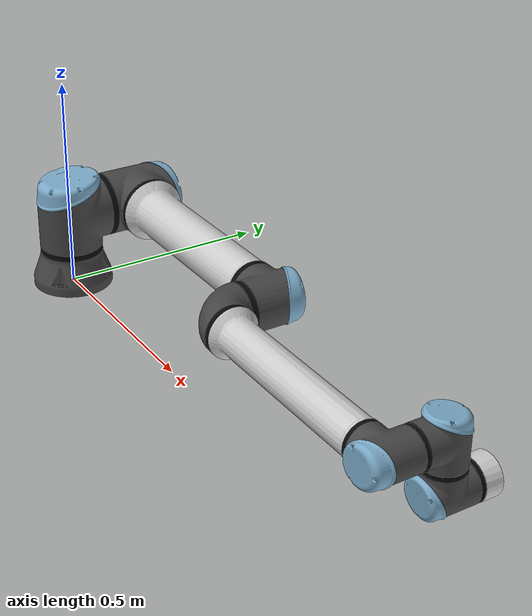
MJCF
<?xml version="1.0" ?>
<mujoco model="ur10e">
	<compiler meshdir="ur10e/meshes" texturedir="ur10e/textures" angle="radian" autolimits="true" balanceinertia="true" boundmass="0.000001" boundinertia="0.000001"/>
	<default>
		<default class="visual">
			<geom contype="0" conaffinity="0"/>
		</default>
		<default class="collision">
			<geom rgba="1.0 0.0 0.0 0.0"/>
		</default>
	</default>
	<asset>
		<mesh name="base_0" file="stl/base_0.stl" scale="1.0 1.0 1.0"/>
		<mesh name="base_1" file="stl/base_1.stl" scale="1.0 1.0 1.0"/>
		<mesh name="shoulder_0" file="stl/shoulder_0.stl" scale="1.0 1.0 1.0"/>
		<mesh name="shoulder_1" file="stl/shoulder_1.stl" scale="1.0 1.0 1.0"/>
		<mesh name="shoulder_2" file="stl/shoulder_2.stl" scale="1.0 1.0 1.0"/>
		<mesh name="upperarm_0" file="stl/upperarm_0.stl" scale="1.0 1.0 1.0"/>
		<mesh name="upperarm_1" file="stl/upperarm_1.stl" scale="1.0 1.0 1.0"/>
		<mesh name="upperarm_2" file="stl/upperarm_2.stl" scale="1.0 1.0 1.0"/>
		<mesh name="upperarm_3" file="stl/upperarm_3.stl" scale="1.0 1.0 1.0"/>
		<mesh name="forearm_0" file="stl/forearm_0.stl" scale="1.0 1.0 1.0"/>
		<mesh name="forearm_1" file="stl/forearm_1.stl" scale="1.0 1.0 1.0"/>
		<mesh name="forearm_2" file="stl/forearm_2.stl" scale="1.0 1.0 1.0"/>
		<mesh name="forearm_3" file="stl/forearm_3.stl" scale="1.0 1.0 1.0"/>
		<mesh name="wrist1_0" file="stl/wrist1_0.stl" scale="1.0 1.0 1.0"/>
		<mesh name="wrist1_1" file="stl/wrist1_1.stl" scale="1.0 1.0 1.0"/>
		<mesh name="wrist1_2" file="stl/wrist1_2.stl" scale="1.0 1.0 1.0"/>
		<mesh name="wrist2_0" file="stl/wrist2_0.stl" scale="1.0 1.0 1.0"/>
		<mesh name="wrist2_1" file="stl/wrist2_1.stl" scale="1.0 1.0 1.0"/>
		<mesh name="wrist2_2" file="stl/wrist2_2.stl" scale="1.0 1.0 1.0"/>
		<mesh name="wrist3" file="stl/wrist3.stl" scale="1.0 1.0 1.0"/>
		<material name="black" rgba="0.032999999821186066 0.032999999821186066 0.032999999821186066 1.0" emission="0.0" specular="0.5"/>
		<material name="jointgray" rgba="0.27799999713897705 0.27799999713897705 0.27799999713897705 1.0" emission="0.0" specular="0.5"/>
		<material name="urblue" rgba="0.49000000953674316 0.6779999732971191 0.800000011920929 1.0" emission="0.0" specular="0.5"/>
		<material name="linkgray" rgba="0.8199999928474426 0.8199999928474426 0.8199999928474426 1.0" emission="0.0" specular="0.5"/>
	</asset>
	<worldbody>
		<body name="ur10e" pos="0.0 0.0 0.0" quat="1.0 0.0 0.0 0.0">
			<body name="base" pos="0.0 0.0 0.0" quat="1.0 0.0 0.0 0.0">
				<geom name="Geom_0" type="mesh" pos="-3.125204557363759e-06 -4.992584194951633e-07 0.09375101327896118" quat="0.5703510046005249 0.4179709553718567 -0.5703510046005249 0.4179709553718567" mesh="base_0" material="black" class="visual"/>
				<geom name="Geom_1" type="mesh" pos="-1.3645167484810372e-07 2.6099980914295884e-06 0.03139932453632355" quat="0.348185271024704 0.6154395341873169 -0.3482106924057007 0.6154271364212036" mesh="base_1" material="jointgray" class="visual"/>
				<body name="shoulder_link" pos="0.0 0.0 0.1809999942779541" quat="1.0 0.0 0.0 0.0">
					<inertial mass="7.7779998779296875" pos="0.0 0.0 0.0" quat="1.0 0.0 0.0 0.0" diaginertia="0.03147429972887039 0.03147429972887039 0.021875599399209023"/>
					<geom name="Geom_2" type="mesh" pos="3.244896652176976e-05 -0.010769808664917946 0.07042538374662399" quat="-0.08668580651283264 0.7018937468528748 -0.09221332520246506 0.7009475231170654" mesh="shoulder_0" material="urblue" class="visual"/>
					<geom name="Geom_3" type="mesh" pos="-1.6731273717596196e-06 0.08903753757476807 -0.00030296118347905576" quat="0.6819482445716858 -0.186933234333992 -0.18693652749061584 0.681951105594635" mesh="shoulder_1" material="black" class="visual"/>
					<geom name="Geom_4" type="mesh" pos="-9.345800208393484e-06 0.0016752078663557768 -0.01781303435564041" quat="0.6707771420478821 -0.22292205691337585 0.21157848834991455 0.6749802231788635" mesh="shoulder_2" material="jointgray" class="visual"/>
					<geom name="Geom_5" type="capsule" pos="0.0 0.0 -0.05000000074505806" quat="1.0 0.0 0.0 0.0" size="0.07800000160932541 0.07999999821186066 0.0" class="collision"/>
					<joint name="shoulder_pan_joint" type="hinge" pos="0.0 0.0 0.0" range="-6.28318977355957 6.28318977355957" axis="0.0 0.0 1.0"/>
					<body name="upper_arm_link" pos="0.0 0.17599999904632568 0.0" quat="0.7071067690849304 0.0 0.7071067690849304 0.0">
						<inertial mass="12.930000305175781" pos="0.0 0.0 0.30649998784065247" quat="1.0 0.0 0.0 0.0" diaginertia="0.42307400703430176 0.42307400703430176 0.03636559844017029"/>
						<geom name="Geom_6" type="mesh" pos="-5.568376764131244e-06 -0.025972411036491394 0.41198819875717163" quat="0.6960460543632507 0.0431213304400444 -0.04434560611844063 0.715327799320221" mesh="upperarm_0" material="black" class="visual"/>
						<geom name="Geom_7" type="mesh" pos="0.0003072679101023823 -0.021370388567447662 0.2412535846233368" quat="0.6867386698722839 -0.0009567410452291369 0.000387406355002895 0.7269036769866943" mesh="upperarm_1" material="jointgray" class="visual"/>
						<geom name="Geom_8" type="mesh" pos="-0.0006588933756574988 0.05708777904510498 0.27944114804267883" quat="0.7030136585235596 0.011557461693882942 -0.010392889380455017 0.7110065221786499" mesh="upperarm_2" material="urblue" class="visual"/>
						<geom name="Geom_9" type="mesh" pos="7.534561154898256e-05 -1.8876577087212354e-05 0.3043956160545349" quat="0.9119481444358826 -1.3257318641990423e-05 -0.00043278399971313775 0.4103052020072937" mesh="upperarm_3" material="linkgray" class="visual"/>
						<geom name="Geom_10" type="capsule" pos="0.0 -0.05000000074505806 0.0" quat="0.7071067690849304 0.7071067690849304 0.0 0.0" size="0.07800000160932541 0.07999999821186066 0.0" class="collision"/>
						<geom name="Geom_11" type="capsule" pos="0.0 0.0 0.30000001192092896" quat="1.0 0.0 0.0 0.0" size="0.05999999865889549 0.30000001192092896 0.0" class="collision"/>
						<joint name="shoulder_lift_joint" type="hinge" pos="0.0 0.0 0.0" range="-6.28318977355957 6.28318977355957" axis="0.0 1.0 0.0"/>
						<body name="forearm_link" pos="0.0 -0.13699999451637268 0.6129999756813049" quat="1.0 0.0 0.0 0.0">
							<inertial mass="3.869999885559082" pos="0.0 0.0 0.2854999899864197" quat="1.0 0.0 0.0 0.0" diaginertia="0.11059000343084335 0.11059000343084335 0.010884400457143784"/>
							<geom name="Geom_12" type="mesh" pos="-1.3935309652879369e-06 -0.040280960500240326 0.5763769745826721" quat="0.6975369453430176 -0.11606183648109436 0.09624465554952621 0.7005060911178589" mesh="forearm_0" material="urblue" class="visual"/>
							<geom name="Geom_13" type="mesh" pos="-2.1910651412326843e-05 0.024394892156124115 0.3868485689163208" quat="0.9982979893684387 -0.05802230164408684 -0.0003626399557106197 -0.005866236053407192" mesh="forearm_1" material="black" class="visual"/>
							<geom name="Geom_14" type="mesh" pos="1.7753389329300262e-05 0.0125293442979455 0.249954491853714" quat="0.7049124240875244 -0.007895069196820259 0.007925815880298615 0.7092061042785645" mesh="forearm_2" material="jointgray" class="visual"/>
							<geom name="Geom_15" type="mesh" pos="0.00011829264258267358 -0.00020199685241095722 0.27932435274124146" quat="0.5598878860473633 -2.863386362150777e-05 -0.0002012703916989267 0.8285683393478394" mesh="forearm_3" material="linkgray" class="visual"/>
							<geom name="Geom_16" type="capsule" pos="0.0 0.07999999821186066 0.0" quat="0.7071067690849304 0.7071067690849304 0.0 0.0" size="0.057999998331069946 0.06499999761581421 0.0" class="collision"/>
							<geom name="Geom_17" type="capsule" pos="0.0 0.0 0.28999999165534973" quat="1.0 0.0 0.0 0.0" size="0.0430000014603138 0.2800000011920929 0.0" class="collision"/>
							<joint name="elbow_joint" type="hinge" pos="0.0 0.0 0.0" range="-3.1414999961853027 3.1414999961853027" axis="0.0 1.0 0.0"/>
							<body name="wrist_1_link" pos="0.0 0.0 0.5709999799728394" quat="0.7071067690849304 0.0 0.7071067690849304 0.0">
								<inertial mass="1.9600000381469727" pos="0.0 0.13500000536441803 0.0" quat="0.5 0.5 -0.5 0.5" diaginertia="0.0055125001817941666 0.005108249839395285 0.005108249839395285"/>
								<geom name="Geom_18" type="mesh" pos="-9.982719348045066e-06 0.13517743349075317 0.06050030142068863" quat="0.48062780499458313 0.5185896754264832 -0.48065462708473206 0.5186837315559387" mesh="wrist1_0" material="black" class="visual"/>
								<geom name="Geom_19" type="mesh" pos="-2.7701032649929402e-06 0.14092853665351868 -0.04046843945980072" quat="0.42435628175735474 0.5656287670135498 -0.5731666088104248 0.41408440470695496" mesh="wrist1_1" material="urblue" class="visual"/>
								<geom name="Geom_20" type="mesh" pos="-2.188484586440609e-06 0.12703046202659607 0.019669165834784508" quat="0.30686652660369873 0.6372891664505005 -0.6369754076004028 0.3065253794193268" mesh="wrist1_2" material="jointgray" class="visual"/>
								<geom name="Geom_21" type="capsule" pos="0.0 0.05999999865889549 0.0" quat="0.7071067690849304 0.7071067690849304 0.0 0.0" size="0.05000000074505806 0.07000000029802322 0.0" class="collision"/>
								<joint name="wrist_1_joint" type="hinge" pos="0.0 0.0 0.0" range="-6.28318977355957 6.28318977355957" axis="0.0 1.0 0.0"/>
								<body name="wrist_2_link" pos="0.0 0.13500000536441803 0.0" quat="1.0 0.0 0.0 0.0">
									<inertial mass="1.9600000381469727" pos="0.0 0.0 0.11999999731779099" quat="0.5 0.5 -0.5 0.5" diaginertia="0.0055125001817941666 0.005108249839395285 0.005108249839395285"/>
									<geom name="Geom_22" type="mesh" pos="1.7371668945997953e-05 0.06140662357211113 0.11943358182907104" quat="0.6631446480751038 0.24550370872020721 0.24561698734760284 0.6630530953407288" mesh="wrist2_0" material="black" class="visual"/>
									<geom name="Geom_23" type="mesh" pos="3.399424485905911e-06 -0.03994759917259216 0.12525595724582672" quat="0.6983300447463989 -0.11105317622423172 0.10123603045940399 0.6998240351676941" mesh="wrist2_1" material="urblue" class="visual"/>
									<geom name="Geom_24" type="mesh" pos="1.572869564370194e-06 0.02357337810099125 0.11706835776567459" quat="0.6533523797988892 -0.2704598903656006 0.2703809142112732 0.653357744216919" mesh="wrist2_2" material="jointgray" class="visual"/>
									<geom name="Geom_25" type="capsule" pos="0.0 0.0 0.05000000074505806" quat="1.0 0.0 0.0 0.0" size="0.04600000008940697 0.06499999761581421 0.0" class="collision"/>
									<geom name="Geom_26" type="capsule" pos="0.0 0.02800000086426735 0.11999999731779099" quat="0.7071067690849304 0.7071067690849304 0.0 0.0" size="0.04600000008940697 0.0430000014603138 0.0" class="collision"/>
									<joint name="wrist_2_joint" type="hinge" pos="0.0 0.0 0.0" range="-6.28318977355957 6.28318977355957" axis="0.0 0.0 1.0"/>
									<body name="wrist_3_link" pos="0.0 0.0 0.11999999731779099" quat="1.0 0.0 0.0 0.0">
										<inertial mass="0.20200000703334808" pos="0.0 0.09200000017881393 0.0" quat="0.0 0.7071067690849304 -0.7071067690849304 0.0" diaginertia="0.00020452500029932708 0.00014434600598178804 0.00014434600598178804"/>
										<geom name="Geom_27" type="mesh" pos="-2.434160705888644e-06 0.0956597551703453 -0.0005147928604856133" quat="0.7069690823554993 0.01596463844180107 0.0177699476480484 0.7068408727645874" mesh="wrist3" material="linkgray" class="visual"/>
										<geom name="Geom_28" type="cylinder" pos="0.0 0.09700000286102295 0.0" quat="0.7071067690849304 0.7071067690849304 0.0 0.0" size="0.04600000008940697 0.019999999552965164 0.0" class="collision"/>
										<joint name="wrist_3_joint" type="hinge" pos="0.0 0.0 0.0" range="-6.28318977355957 6.28318977355957" axis="0.0 1.0 0.0"/>
									</body>
								</body>
							</body>
						</body>
					</body>
				</body>
			</body>
		</body>
	</worldbody>
	<equality/>
</mujoco>
